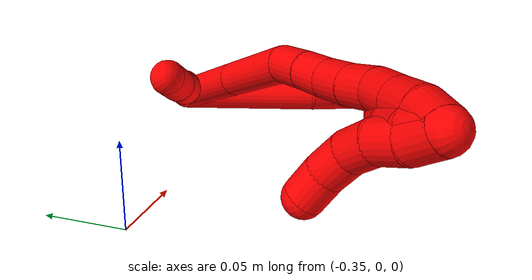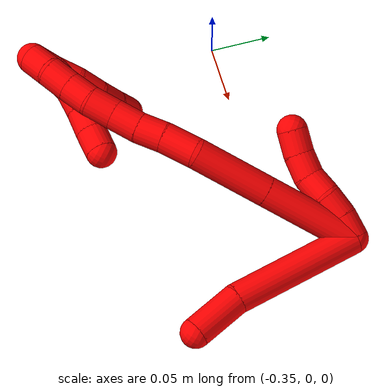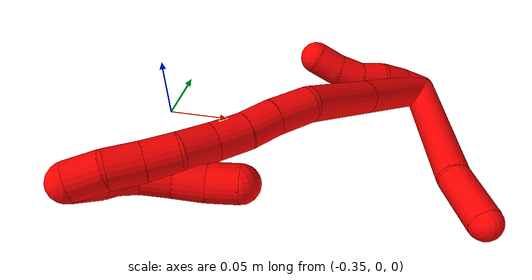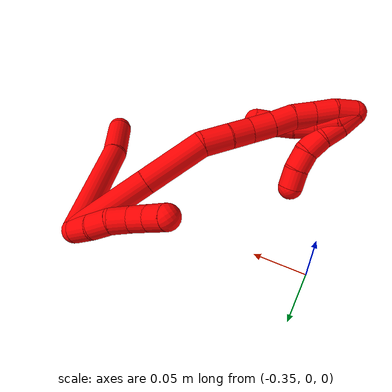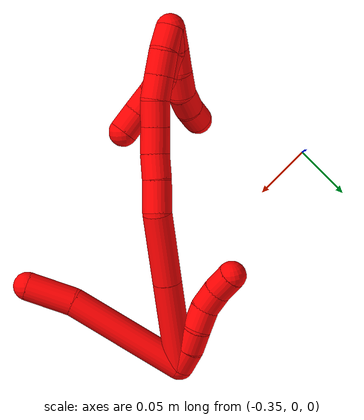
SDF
<sdf version="1.7">
 <world name="default">
  <model name="2">
   <static>0</static>
   <link name="2">
    <collision name="collision-cylinder-e_1_2_8">
     <pose>0.020703 -0.037714 0.032223 0.863751 0.395381 0.184118</pose>
     <geometry><cylinder><radius>0.0125</radius><length>0.107504</length></cylinder></geometry>
     <surface>
      <friction><ode><mu>1.16</mu><mu2>1.16</mu2><slip1>0</slip1><slip2>0</slip2></ode></friction>
      <contact><ode><kp>1e+06</kp><kd>1</kd><max_vel>0</max_vel><min_depth>0.001</min_depth></ode></contact>
     </surface>
    </collision>
    <visual name="visual-cylinder-e_1_2_8">
     <pose>0.020703 -0.037714 0.032223 0.863751 0.395381 0.184118</pose>
     <geometry><cylinder><radius>0.0125</radius><length>0.107504</length></cylinder></geometry>
     <material><ambient>1 0 0 1</ambient></material>
    </visual>
    <collision name="collision-cylinder-e_2_8_6">
     <pose>0.051926 -0.091538 0.073462 1.06058 0.517934 0.308181</pose>
     <geometry><cylinder><radius>0.0125</radius><length>0.042496</length></cylinder></geometry>
     <surface>
      <friction><ode><mu>1.16</mu><mu2>1.16</mu2><slip1>0</slip1><slip2>0</slip2></ode></friction>
      <contact><ode><kp>1e+06</kp><kd>1</kd><max_vel>0</max_vel><min_depth>0.001</min_depth></ode></contact>
     </surface>
    </collision>
    <visual name="visual-cylinder-e_2_8_6">
     <pose>0.051926 -0.091538 0.073462 1.06058 0.517934 0.308181</pose>
     <geometry><cylinder><radius>0.0125</radius><length>0.042496</length></cylinder></geometry>
     <material><ambient>1 0 0 1</ambient></material>
    </visual>
    <collision name="collision-cylinder-e_1_2_9">
     <pose>-0.002862 0.004972 0.008191 -0.54552 -0.290256 0.081723</pose>
     <geometry><cylinder><radius>0.0125</radius><length>0.02</length></cylinder></geometry>
     <surface>
      <friction><ode><mu>1.16</mu><mu2>1.16</mu2><slip1>0</slip1><slip2>0</slip2></ode></friction>
      <contact><ode><kp>1e+06</kp><kd>1</kd><max_vel>0</max_vel><min_depth>0.001</min_depth></ode></contact>
     </surface>
    </collision>
    <visual name="visual-cylinder-e_1_2_9">
     <pose>-0.002862 0.004972 0.008191 -0.54552 -0.290256 0.081723</pose>
     <geometry><cylinder><radius>0.0125</radius><length>0.02</length></cylinder></geometry>
     <material><ambient>1 0 0 1</ambient></material>
    </visual>
    <collision name="collision-cylinder-e_2_9_10">
     <pose>-0.008195 0.013567 0.025369 -0.38329 -0.249711 0.048694</pose>
     <geometry><cylinder><radius>0.0125</radius><length>0.02</length></cylinder></geometry>
     <surface>
      <friction><ode><mu>1.16</mu><mu2>1.16</mu2><slip1>0</slip1><slip2>0</slip2></ode></friction>
      <contact><ode><kp>1e+06</kp><kd>1</kd><max_vel>0</max_vel><min_depth>0.001</min_depth></ode></contact>
     </surface>
    </collision>
    <visual name="visual-cylinder-e_2_9_10">
     <pose>-0.008195 0.013567 0.025369 -0.38329 -0.249711 0.048694</pose>
     <geometry><cylinder><radius>0.0125</radius><length>0.02</length></cylinder></geometry>
     <material><ambient>1 0 0 1</ambient></material>
    </visual>
    <collision name="collision-cylinder-e_3_10_11">
     <pose>-0.0152 0.019535 0.042955 -0.266152 -0.470535 0.064156</pose>
     <geometry><cylinder><radius>0.0125</radius><length>0.02</length></cylinder></geometry>
     <surface>
      <friction><ode><mu>1.16</mu><mu2>1.16</mu2><slip1>0</slip1><slip2>0</slip2></ode></friction>
      <contact><ode><kp>1e+06</kp><kd>1</kd><max_vel>0</max_vel><min_depth>0.001</min_depth></ode></contact>
     </surface>
    </collision>
    <visual name="visual-cylinder-e_3_10_11">
     <pose>-0.0152 0.019535 0.042955 -0.266152 -0.470535 0.064156</pose>
     <geometry><cylinder><radius>0.0125</radius><length>0.02</length></cylinder></geometry>
     <material><ambient>1 0 0 1</ambient></material>
    </visual>
    <collision name="collision-cylinder-e_4_11_12">
     <pose>-0.023408 0.027304 0.059109 -0.622682 -0.376267 0.122381</pose>
     <geometry><cylinder><radius>0.0125</radius><length>0.02</length></cylinder></geometry>
     <surface>
      <friction><ode><mu>1.16</mu><mu2>1.16</mu2><slip1>0</slip1><slip2>0</slip2></ode></friction>
      <contact><ode><kp>1e+06</kp><kd>1</kd><max_vel>0</max_vel><min_depth>0.001</min_depth></ode></contact>
     </surface>
    </collision>
    <visual name="visual-cylinder-e_4_11_12">
     <pose>-0.023408 0.027304 0.059109 -0.622682 -0.376267 0.122381</pose>
     <geometry><cylinder><radius>0.0125</radius><length>0.02</length></cylinder></geometry>
     <material><ambient>1 0 0 1</ambient></material>
    </visual>
    <collision name="collision-cylinder-e_5_12_5">
     <pose>-0.030055 0.039439 0.073456 -0.779411 -0.301782 0.124732</pose>
     <geometry><cylinder><radius>0.0125</radius><length>0.02</length></cylinder></geometry>
     <surface>
      <friction><ode><mu>1.16</mu><mu2>1.16</mu2><slip1>0</slip1><slip2>0</slip2></ode></friction>
      <contact><ode><kp>1e+06</kp><kd>1</kd><max_vel>0</max_vel><min_depth>0.001</min_depth></ode></contact>
     </surface>
    </collision>
    <visual name="visual-cylinder-e_5_12_5">
     <pose>-0.030055 0.039439 0.073456 -0.779411 -0.301782 0.124732</pose>
     <geometry><cylinder><radius>0.0125</radius><length>0.02</length></cylinder></geometry>
     <material><ambient>1 0 0 1</ambient></material>
    </visual>
    <collision name="collision-cylinder-e_1_2_13">
     <pose>-0.000209 0.000433 0.039943 -0.010845 -0.005231 2.8e-05</pose>
     <geometry><cylinder><radius>0.0125</radius><length>0.079891</length></cylinder></geometry>
     <surface>
      <friction><ode><mu>1.16</mu><mu2>1.16</mu2><slip1>0</slip1><slip2>0</slip2></ode></friction>
      <contact><ode><kp>1e+06</kp><kd>1</kd><max_vel>0</max_vel><min_depth>0.001</min_depth></ode></contact>
     </surface>
    </collision>
    <visual name="visual-cylinder-e_1_2_13">
     <pose>-0.000209 0.000433 0.039943 -0.010845 -0.005231 2.8e-05</pose>
     <geometry><cylinder><radius>0.0125</radius><length>0.079891</length></cylinder></geometry>
     <material><ambient>1 0 0 1</ambient></material>
    </visual>
    <collision name="collision-cylinder-e_2_13_14">
     <pose>-0.000671 0.001189 0.111419 -0.010242 -0.008041 4.1e-05</pose>
     <geometry><cylinder><radius>0.0125</radius><length>0.063072</length></cylinder></geometry>
     <surface>
      <friction><ode><mu>1.16</mu><mu2>1.16</mu2><slip1>0</slip1><slip2>0</slip2></ode></friction>
      <contact><ode><kp>1e+06</kp><kd>1</kd><max_vel>0</max_vel><min_depth>0.001</min_depth></ode></contact>
     </surface>
    </collision>
    <visual name="visual-cylinder-e_2_13_14">
     <pose>-0.000671 0.001189 0.111419 -0.010242 -0.008041 4.1e-05</pose>
     <geometry><cylinder><radius>0.0125</radius><length>0.063072</length></cylinder></geometry>
     <material><ambient>1 0 0 1</ambient></material>
    </visual>
    <collision name="collision-cylinder-e_3_14_15">
     <pose>-0.005414 -0.000145 0.156073 0.12564 -0.327211 -0.020767</pose>
     <geometry><cylinder><radius>0.0125</radius><length>0.027933</length></cylinder></geometry>
     <surface>
      <friction><ode><mu>1.16</mu><mu2>1.16</mu2><slip1>0</slip1><slip2>0</slip2></ode></friction>
      <contact><ode><kp>1e+06</kp><kd>1</kd><max_vel>0</max_vel><min_depth>0.001</min_depth></ode></contact>
     </surface>
    </collision>
    <visual name="visual-cylinder-e_3_14_15">
     <pose>-0.005414 -0.000145 0.156073 0.12564 -0.327211 -0.020767</pose>
     <geometry><cylinder><radius>0.0125</radius><length>0.027933</length></cylinder></geometry>
     <material><ambient>1 0 0 1</ambient></material>
    </visual>
    <collision name="collision-cylinder-e_4_15_16">
     <pose>-0.013367 -0.004064 0.179222 0.221824 -0.325101 -0.036524</pose>
     <geometry><cylinder><radius>0.0125</radius><length>0.021694</length></cylinder></geometry>
     <surface>
      <friction><ode><mu>1.16</mu><mu2>1.16</mu2><slip1>0</slip1><slip2>0</slip2></ode></friction>
      <contact><ode><kp>1e+06</kp><kd>1</kd><max_vel>0</max_vel><min_depth>0.001</min_depth></ode></contact>
     </surface>
    </collision>
    <visual name="visual-cylinder-e_4_15_16">
     <pose>-0.013367 -0.004064 0.179222 0.221824 -0.325101 -0.036524</pose>
     <geometry><cylinder><radius>0.0125</radius><length>0.021694</length></cylinder></geometry>
     <material><ambient>1 0 0 1</ambient></material>
    </visual>
    <collision name="collision-cylinder-e_5_16_17">
     <pose>-0.02051 -0.007297 0.199998 0.090161 -0.328487 -0.014953</pose>
     <geometry><cylinder><radius>0.0125</radius><length>0.022805</length></cylinder></geometry>
     <surface>
      <friction><ode><mu>1.16</mu><mu2>1.16</mu2><slip1>0</slip1><slip2>0</slip2></ode></friction>
      <contact><ode><kp>1e+06</kp><kd>1</kd><max_vel>0</max_vel><min_depth>0.001</min_depth></ode></contact>
     </surface>
    </collision>
    <visual name="visual-cylinder-e_5_16_17">
     <pose>-0.02051 -0.007297 0.199998 0.090161 -0.328487 -0.014953</pose>
     <geometry><cylinder><radius>0.0125</radius><length>0.022805</length></cylinder></geometry>
     <material><ambient>1 0 0 1</ambient></material>
    </visual>
    <collision name="collision-cylinder-e_6_17_18">
     <pose>-0.027035 -0.008916 0.221551 0.059835 -0.257155 -0.007738</pose>
     <geometry><cylinder><radius>0.0125</radius><length>0.022384</length></cylinder></geometry>
     <surface>
      <friction><ode><mu>1.16</mu><mu2>1.16</mu2><slip1>0</slip1><slip2>0</slip2></ode></friction>
      <contact><ode><kp>1e+06</kp><kd>1</kd><max_vel>0</max_vel><min_depth>0.001</min_depth></ode></contact>
     </surface>
    </collision>
    <visual name="visual-cylinder-e_6_17_18">
     <pose>-0.027035 -0.008916 0.221551 0.059835 -0.257155 -0.007738</pose>
     <geometry><cylinder><radius>0.0125</radius><length>0.022384</length></cylinder></geometry>
     <material><ambient>1 0 0 1</ambient></material>
    </visual>
    <collision name="collision-cylinder-e_7_18_19">
     <pose>-0.03455 -0.009593 0.241598 0.003257 -0.467723 -0.000776</pose>
     <geometry><cylinder><radius>0.0125</radius><length>0.020709</length></cylinder></geometry>
     <surface>
      <friction><ode><mu>1.16</mu><mu2>1.16</mu2><slip1>0</slip1><slip2>0</slip2></ode></friction>
      <contact><ode><kp>1e+06</kp><kd>1</kd><max_vel>0</max_vel><min_depth>0.001</min_depth></ode></contact>
     </surface>
    </collision>
    <visual name="visual-cylinder-e_7_18_19">
     <pose>-0.03455 -0.009593 0.241598 0.003257 -0.467723 -0.000776</pose>
     <geometry><cylinder><radius>0.0125</radius><length>0.020709</length></cylinder></geometry>
     <material><ambient>1 0 0 1</ambient></material>
    </visual>
    <collision name="collision-cylinder-e_8_19_20">
     <pose>-0.04384 -0.009219 0.260415 -0.042247 -0.449301 0.009655</pose>
     <geometry><cylinder><radius>0.0125</radius><length>0.021278</length></cylinder></geometry>
     <surface>
      <friction><ode><mu>1.16</mu><mu2>1.16</mu2><slip1>0</slip1><slip2>0</slip2></ode></friction>
      <contact><ode><kp>1e+06</kp><kd>1</kd><max_vel>0</max_vel><min_depth>0.001</min_depth></ode></contact>
     </surface>
    </collision>
    <visual name="visual-cylinder-e_8_19_20">
     <pose>-0.04384 -0.009219 0.260415 -0.042247 -0.449301 0.009655</pose>
     <geometry><cylinder><radius>0.0125</radius><length>0.021278</length></cylinder></geometry>
     <material><ambient>1 0 0 1</ambient></material>
    </visual>
    <collision name="collision-cylinder-e_9_20_1">
     <pose>-0.054707 -0.009174 0.27794 0.045306 -0.665418 -0.015658</pose>
     <geometry><cylinder><radius>0.0125</radius><length>0.020233</length></cylinder></geometry>
     <surface>
      <friction><ode><mu>1.16</mu><mu2>1.16</mu2><slip1>0</slip1><slip2>0</slip2></ode></friction>
      <contact><ode><kp>1e+06</kp><kd>1</kd><max_vel>0</max_vel><min_depth>0.001</min_depth></ode></contact>
     </surface>
    </collision>
    <visual name="visual-cylinder-e_9_20_1">
     <pose>-0.054707 -0.009174 0.27794 0.045306 -0.665418 -0.015658</pose>
     <geometry><cylinder><radius>0.0125</radius><length>0.020233</length></cylinder></geometry>
     <material><ambient>1 0 0 1</ambient></material>
    </visual>
    <collision name="collision-cylinder-e_1_1_21">
     <pose>-0.062312 -0.01046 0.276027 3.04802 -0.136427 -1.93998</pose>
     <geometry><cylinder><radius>0.0125</radius><length>0.02</length></cylinder></geometry>
     <surface>
      <friction><ode><mu>1.16</mu><mu2>1.16</mu2><slip1>0</slip1><slip2>0</slip2></ode></friction>
      <contact><ode><kp>1e+06</kp><kd>1</kd><max_vel>0</max_vel><min_depth>0.001</min_depth></ode></contact>
     </surface>
    </collision>
    <visual name="visual-cylinder-e_1_1_21">
     <pose>-0.062312 -0.01046 0.276027 3.04802 -0.136427 -1.93998</pose>
     <geometry><cylinder><radius>0.0125</radius><length>0.02</length></cylinder></geometry>
     <material><ambient>1 0 0 1</ambient></material>
    </visual>
    <collision name="collision-cylinder-e_2_21_22">
     <pose>-0.063238 -0.010904 0.256184 -3.09328 0.043438 -1.4646</pose>
     <geometry><cylinder><radius>0.0125</radius><length>0.02</length></cylinder></geometry>
     <surface>
      <friction><ode><mu>1.16</mu><mu2>1.16</mu2><slip1>0</slip1><slip2>0</slip2></ode></friction>
      <contact><ode><kp>1e+06</kp><kd>1</kd><max_vel>0</max_vel><min_depth>0.001</min_depth></ode></contact>
     </surface>
    </collision>
    <visual name="visual-cylinder-e_2_21_22">
     <pose>-0.063238 -0.010904 0.256184 -3.09328 0.043438 -1.4646</pose>
     <geometry><cylinder><radius>0.0125</radius><length>0.02</length></cylinder></geometry>
     <material><ambient>1 0 0 1</ambient></material>
    </visual>
    <collision name="collision-cylinder-e_3_22_23">
     <pose>-0.064474 -0.011696 0.236428 3.0119 -0.167758 -1.82628</pose>
     <geometry><cylinder><radius>0.0125</radius><length>0.02</length></cylinder></geometry>
     <surface>
      <friction><ode><mu>1.16</mu><mu2>1.16</mu2><slip1>0</slip1><slip2>0</slip2></ode></friction>
      <contact><ode><kp>1e+06</kp><kd>1</kd><max_vel>0</max_vel><min_depth>0.001</min_depth></ode></contact>
     </surface>
    </collision>
    <visual name="visual-cylinder-e_3_22_23">
     <pose>-0.064474 -0.011696 0.236428 3.0119 -0.167758 -1.82628</pose>
     <geometry><cylinder><radius>0.0125</radius><length>0.02</length></cylinder></geometry>
     <material><ambient>1 0 0 1</ambient></material>
    </visual>
    <collision name="collision-cylinder-e_4_23_24">
     <pose>-0.071007 -0.014727 0.218092 2.93924 -0.507937 -2.39596</pose>
     <geometry><cylinder><radius>0.0125</radius><length>0.02</length></cylinder></geometry>
     <surface>
      <friction><ode><mu>1.16</mu><mu2>1.16</mu2><slip1>0</slip1><slip2>0</slip2></ode></friction>
      <contact><ode><kp>1e+06</kp><kd>1</kd><max_vel>0</max_vel><min_depth>0.001</min_depth></ode></contact>
     </surface>
    </collision>
    <visual name="visual-cylinder-e_4_23_24">
     <pose>-0.071007 -0.014727 0.218092 2.93924 -0.507937 -2.39596</pose>
     <geometry><cylinder><radius>0.0125</radius><length>0.02</length></cylinder></geometry>
     <material><ambient>1 0 0 1</ambient></material>
    </visual>
    <collision name="collision-cylinder-e_5_24_4">
     <pose>-0.082341 -0.01837 0.202145 2.89162 -0.703634 -2.48205</pose>
     <geometry><cylinder><radius>0.0125</radius><length>0.02</length></cylinder></geometry>
     <surface>
      <friction><ode><mu>1.16</mu><mu2>1.16</mu2><slip1>0</slip1><slip2>0</slip2></ode></friction>
      <contact><ode><kp>1e+06</kp><kd>1</kd><max_vel>0</max_vel><min_depth>0.001</min_depth></ode></contact>
     </surface>
    </collision>
    <visual name="visual-cylinder-e_5_24_4">
     <pose>-0.082341 -0.01837 0.202145 2.89162 -0.703634 -2.48205</pose>
     <geometry><cylinder><radius>0.0125</radius><length>0.02</length></cylinder></geometry>
     <material><ambient>1 0 0 1</ambient></material>
    </visual>
    <collision name="collision-cylinder-e_1_1_25">
     <pose>-0.059572 -0.009931 0.275994 3.10153 0.138506 2.57928</pose>
     <geometry><cylinder><radius>0.0125</radius><length>0.02</length></cylinder></geometry>
     <surface>
      <friction><ode><mu>1.16</mu><mu2>1.16</mu2><slip1>0</slip1><slip2>0</slip2></ode></friction>
      <contact><ode><kp>1e+06</kp><kd>1</kd><max_vel>0</max_vel><min_depth>0.001</min_depth></ode></contact>
     </surface>
    </collision>
    <visual name="visual-cylinder-e_1_1_25">
     <pose>-0.059572 -0.009931 0.275994 3.10153 0.138506 2.57928</pose>
     <geometry><cylinder><radius>0.0125</radius><length>0.02</length></cylinder></geometry>
     <material><ambient>1 0 0 1</ambient></material>
    </visual>
    <collision name="collision-cylinder-e_2_25_26">
     <pose>-0.054518 -0.012508 0.257056 2.90505 0.376144 2.02535</pose>
     <geometry><cylinder><radius>0.0125</radius><length>0.02</length></cylinder></geometry>
     <surface>
      <friction><ode><mu>1.16</mu><mu2>1.16</mu2><slip1>0</slip1><slip2>0</slip2></ode></friction>
      <contact><ode><kp>1e+06</kp><kd>1</kd><max_vel>0</max_vel><min_depth>0.001</min_depth></ode></contact>
     </surface>
    </collision>
    <visual name="visual-cylinder-e_2_25_26">
     <pose>-0.054518 -0.012508 0.257056 2.90505 0.376144 2.02535</pose>
     <geometry><cylinder><radius>0.0125</radius><length>0.02</length></cylinder></geometry>
     <material><ambient>1 0 0 1</ambient></material>
    </visual>
    <collision name="collision-cylinder-e_3_26_27">
     <pose>-0.045632 -0.018714 0.240489 2.65027 0.54825 1.68526</pose>
     <geometry><cylinder><radius>0.0125</radius><length>0.02</length></cylinder></geometry>
     <surface>
      <friction><ode><mu>1.16</mu><mu2>1.16</mu2><slip1>0</slip1><slip2>0</slip2></ode></friction>
      <contact><ode><kp>1e+06</kp><kd>1</kd><max_vel>0</max_vel><min_depth>0.001</min_depth></ode></contact>
     </surface>
    </collision>
    <visual name="visual-cylinder-e_3_26_27">
     <pose>-0.045632 -0.018714 0.240489 2.65027 0.54825 1.68526</pose>
     <geometry><cylinder><radius>0.0125</radius><length>0.02</length></cylinder></geometry>
     <material><ambient>1 0 0 1</ambient></material>
    </visual>
    <collision name="collision-cylinder-e_4_27_28">
     <pose>-0.034365 -0.026943 0.226206 2.58521 0.65045 1.73612</pose>
     <geometry><cylinder><radius>0.0125</radius><length>0.02</length></cylinder></geometry>
     <surface>
      <friction><ode><mu>1.16</mu><mu2>1.16</mu2><slip1>0</slip1><slip2>0</slip2></ode></friction>
      <contact><ode><kp>1e+06</kp><kd>1</kd><max_vel>0</max_vel><min_depth>0.001</min_depth></ode></contact>
     </surface>
    </collision>
    <visual name="visual-cylinder-e_4_27_28">
     <pose>-0.034365 -0.026943 0.226206 2.58521 0.65045 1.73612</pose>
     <geometry><cylinder><radius>0.0125</radius><length>0.02</length></cylinder></geometry>
     <material><ambient>1 0 0 1</ambient></material>
    </visual>
    <collision name="collision-cylinder-e_5_28_3">
     <pose>-0.021603 -0.034552 0.212859 2.66449 0.735047 2.01492</pose>
     <geometry><cylinder><radius>0.0125</radius><length>0.02</length></cylinder></geometry>
     <surface>
      <friction><ode><mu>1.16</mu><mu2>1.16</mu2><slip1>0</slip1><slip2>0</slip2></ode></friction>
      <contact><ode><kp>1e+06</kp><kd>1</kd><max_vel>0</max_vel><min_depth>0.001</min_depth></ode></contact>
     </surface>
    </collision>
    <visual name="visual-cylinder-e_5_28_3">
     <pose>-0.021603 -0.034552 0.212859 2.66449 0.735047 2.01492</pose>
     <geometry><cylinder><radius>0.0125</radius><length>0.02</length></cylinder></geometry>
     <material><ambient>1 0 0 1</ambient></material>
    </visual>
    <collision name="collision-sphere-3">
     <pose>-0.014897 -0.037959 0.206269 0 -0 0</pose>
     <geometry><sphere><radius>0.0125</radius></sphere></geometry>
     <surface>
      <friction><ode><mu>1.16</mu><mu2>1.16</mu2><slip1>0</slip1><slip2>0</slip2></ode></friction>
      <contact><ode><kp>1e+06</kp><kd>1</kd><max_vel>0</max_vel><min_depth>0.001</min_depth></ode></contact>
     </surface>
    </collision>
    <visual name="visual-sphere-3">
     <pose>-0.014897 -0.037959 0.206269 0 -0 0</pose>
     <geometry><sphere><radius>0.0125</radius></sphere></geometry>
     <material><ambient>1 0 0 1</ambient></material>
    </visual>
    <collision name="collision-sphere-28">
     <pose>-0.02831 -0.031146 0.219449 0 -0 0</pose>
     <geometry><sphere><radius>0.0125</radius></sphere></geometry>
     <surface>
      <friction><ode><mu>1.16</mu><mu2>1.16</mu2><slip1>0</slip1><slip2>0</slip2></ode></friction>
      <contact><ode><kp>1e+06</kp><kd>1</kd><max_vel>0</max_vel><min_depth>0.001</min_depth></ode></contact>
     </surface>
    </collision>
    <visual name="visual-sphere-28">
     <pose>-0.02831 -0.031146 0.219449 0 -0 0</pose>
     <geometry><sphere><radius>0.0125</radius></sphere></geometry>
     <material><ambient>1 0 0 1</ambient></material>
    </visual>
    <collision name="collision-sphere-27">
     <pose>-0.04042 -0.02274 0.232964 0 -0 0</pose>
     <geometry><sphere><radius>0.0125</radius></sphere></geometry>
     <surface>
      <friction><ode><mu>1.16</mu><mu2>1.16</mu2><slip1>0</slip1><slip2>0</slip2></ode></friction>
      <contact><ode><kp>1e+06</kp><kd>1</kd><max_vel>0</max_vel><min_depth>0.001</min_depth></ode></contact>
     </surface>
    </collision>
    <visual name="visual-sphere-27">
     <pose>-0.04042 -0.02274 0.232964 0 -0 0</pose>
     <geometry><sphere><radius>0.0125</radius></sphere></geometry>
     <material><ambient>1 0 0 1</ambient></material>
    </visual>
    <collision name="collision-sphere-26">
     <pose>-0.050844 -0.014687 0.248014 0 -0 0</pose>
     <geometry><sphere><radius>0.0125</radius></sphere></geometry>
     <surface>
      <friction><ode><mu>1.16</mu><mu2>1.16</mu2><slip1>0</slip1><slip2>0</slip2></ode></friction>
      <contact><ode><kp>1e+06</kp><kd>1</kd><max_vel>0</max_vel><min_depth>0.001</min_depth></ode></contact>
     </surface>
    </collision>
    <visual name="visual-sphere-26">
     <pose>-0.050844 -0.014687 0.248014 0 -0 0</pose>
     <geometry><sphere><radius>0.0125</radius></sphere></geometry>
     <material><ambient>1 0 0 1</ambient></material>
    </visual>
    <collision name="collision-sphere-25">
     <pose>-0.058191 -0.010328 0.266098 0 -0 0</pose>
     <geometry><sphere><radius>0.0125</radius></sphere></geometry>
     <surface>
      <friction><ode><mu>1.16</mu><mu2>1.16</mu2><slip1>0</slip1><slip2>0</slip2></ode></friction>
      <contact><ode><kp>1e+06</kp><kd>1</kd><max_vel>0</max_vel><min_depth>0.001</min_depth></ode></contact>
     </surface>
    </collision>
    <visual name="visual-sphere-25">
     <pose>-0.058191 -0.010328 0.266098 0 -0 0</pose>
     <geometry><sphere><radius>0.0125</radius></sphere></geometry>
     <material><ambient>1 0 0 1</ambient></material>
    </visual>
    <collision name="collision-sphere-4">
     <pose>-0.088811 -0.020256 0.194757 0 -0 0</pose>
     <geometry><sphere><radius>0.0125</radius></sphere></geometry>
     <surface>
      <friction><ode><mu>1.16</mu><mu2>1.16</mu2><slip1>0</slip1><slip2>0</slip2></ode></friction>
      <contact><ode><kp>1e+06</kp><kd>1</kd><max_vel>0</max_vel><min_depth>0.001</min_depth></ode></contact>
     </surface>
    </collision>
    <visual name="visual-sphere-4">
     <pose>-0.088811 -0.020256 0.194757 0 -0 0</pose>
     <geometry><sphere><radius>0.0125</radius></sphere></geometry>
     <material><ambient>1 0 0 1</ambient></material>
    </visual>
    <collision name="collision-sphere-24">
     <pose>-0.075871 -0.016483 0.209533 0 -0 0</pose>
     <geometry><sphere><radius>0.0125</radius></sphere></geometry>
     <surface>
      <friction><ode><mu>1.16</mu><mu2>1.16</mu2><slip1>0</slip1><slip2>0</slip2></ode></friction>
      <contact><ode><kp>1e+06</kp><kd>1</kd><max_vel>0</max_vel><min_depth>0.001</min_depth></ode></contact>
     </surface>
    </collision>
    <visual name="visual-sphere-24">
     <pose>-0.075871 -0.016483 0.209533 0 -0 0</pose>
     <geometry><sphere><radius>0.0125</radius></sphere></geometry>
     <material><ambient>1 0 0 1</ambient></material>
    </visual>
    <collision name="collision-sphere-23">
     <pose>-0.066143 -0.012971 0.226651 0 -0 0</pose>
     <geometry><sphere><radius>0.0125</radius></sphere></geometry>
     <surface>
      <friction><ode><mu>1.16</mu><mu2>1.16</mu2><slip1>0</slip1><slip2>0</slip2></ode></friction>
      <contact><ode><kp>1e+06</kp><kd>1</kd><max_vel>0</max_vel><min_depth>0.001</min_depth></ode></contact>
     </surface>
    </collision>
    <visual name="visual-sphere-23">
     <pose>-0.066143 -0.012971 0.226651 0 -0 0</pose>
     <geometry><sphere><radius>0.0125</radius></sphere></geometry>
     <material><ambient>1 0 0 1</ambient></material>
    </visual>
    <collision name="collision-sphere-22">
     <pose>-0.062804 -0.010421 0.246205 0 -0 0</pose>
     <geometry><sphere><radius>0.0125</radius></sphere></geometry>
     <surface>
      <friction><ode><mu>1.16</mu><mu2>1.16</mu2><slip1>0</slip1><slip2>0</slip2></ode></friction>
      <contact><ode><kp>1e+06</kp><kd>1</kd><max_vel>0</max_vel><min_depth>0.001</min_depth></ode></contact>
     </surface>
    </collision>
    <visual name="visual-sphere-22">
     <pose>-0.062804 -0.010421 0.246205 0 -0 0</pose>
     <geometry><sphere><radius>0.0125</radius></sphere></geometry>
     <material><ambient>1 0 0 1</ambient></material>
    </visual>
    <collision name="collision-sphere-21">
     <pose>-0.063672 -0.011386 0.266163 0 -0 0</pose>
     <geometry><sphere><radius>0.0125</radius></sphere></geometry>
     <surface>
      <friction><ode><mu>1.16</mu><mu2>1.16</mu2><slip1>0</slip1><slip2>0</slip2></ode></friction>
      <contact><ode><kp>1e+06</kp><kd>1</kd><max_vel>0</max_vel><min_depth>0.001</min_depth></ode></contact>
     </surface>
    </collision>
    <visual name="visual-sphere-21">
     <pose>-0.063672 -0.011386 0.266163 0 -0 0</pose>
     <geometry><sphere><radius>0.0125</radius></sphere></geometry>
     <material><ambient>1 0 0 1</ambient></material>
    </visual>
    <collision name="collision-sphere-1">
     <pose>-0.060952 -0.009535 0.28589 0 -0 0</pose>
     <geometry><sphere><radius>0.0125</radius></sphere></geometry>
     <surface>
      <friction><ode><mu>1.16</mu><mu2>1.16</mu2><slip1>0</slip1><slip2>0</slip2></ode></friction>
      <contact><ode><kp>1e+06</kp><kd>1</kd><max_vel>0</max_vel><min_depth>0.001</min_depth></ode></contact>
     </surface>
    </collision>
    <visual name="visual-sphere-1">
     <pose>-0.060952 -0.009535 0.28589 0 -0 0</pose>
     <geometry><sphere><radius>0.0125</radius></sphere></geometry>
     <material><ambient>1 0 0 1</ambient></material>
    </visual>
    <collision name="collision-sphere-11">
     <pose>-0.019734 0.021879 0.051554 0 -0 0</pose>
     <geometry><sphere><radius>0.0125</radius></sphere></geometry>
     <surface>
      <friction><ode><mu>1.16</mu><mu2>1.16</mu2><slip1>0</slip1><slip2>0</slip2></ode></friction>
      <contact><ode><kp>1e+06</kp><kd>1</kd><max_vel>0</max_vel><min_depth>0.001</min_depth></ode></contact>
     </surface>
    </collision>
    <visual name="visual-sphere-11">
     <pose>-0.019734 0.021879 0.051554 0 -0 0</pose>
     <geometry><sphere><radius>0.0125</radius></sphere></geometry>
     <material><ambient>1 0 0 1</ambient></material>
    </visual>
    <collision name="collision-sphere-10">
     <pose>-0.010666 0.017191 0.034355 0 -0 0</pose>
     <geometry><sphere><radius>0.0125</radius></sphere></geometry>
     <surface>
      <friction><ode><mu>1.16</mu><mu2>1.16</mu2><slip1>0</slip1><slip2>0</slip2></ode></friction>
      <contact><ode><kp>1e+06</kp><kd>1</kd><max_vel>0</max_vel><min_depth>0.001</min_depth></ode></contact>
     </surface>
    </collision>
    <visual name="visual-sphere-10">
     <pose>-0.010666 0.017191 0.034355 0 -0 0</pose>
     <geometry><sphere><radius>0.0125</radius></sphere></geometry>
     <material><ambient>1 0 0 1</ambient></material>
    </visual>
    <collision name="collision-sphere-6">
     <pose>0.062445 -0.107648 0.082478 0 -0 0</pose>
     <geometry><sphere><radius>0.0125</radius></sphere></geometry>
     <surface>
      <friction><ode><mu>1.16</mu><mu2>1.16</mu2><slip1>0</slip1><slip2>0</slip2></ode></friction>
      <contact><ode><kp>1e+06</kp><kd>1</kd><max_vel>0</max_vel><min_depth>0.001</min_depth></ode></contact>
     </surface>
    </collision>
    <visual name="visual-sphere-6">
     <pose>0.062445 -0.107648 0.082478 0 -0 0</pose>
     <geometry><sphere><radius>0.0125</radius></sphere></geometry>
     <material><ambient>1 0 0 1</ambient></material>
    </visual>
    <collision name="collision-sphere-9">
     <pose>-0.005724 0.009943 0.016382 0 -0 0</pose>
     <geometry><sphere><radius>0.0125</radius></sphere></geometry>
     <surface>
      <friction><ode><mu>1.16</mu><mu2>1.16</mu2><slip1>0</slip1><slip2>0</slip2></ode></friction>
      <contact><ode><kp>1e+06</kp><kd>1</kd><max_vel>0</max_vel><min_depth>0.001</min_depth></ode></contact>
     </surface>
    </collision>
    <visual name="visual-sphere-9">
     <pose>-0.005724 0.009943 0.016382 0 -0 0</pose>
     <geometry><sphere><radius>0.0125</radius></sphere></geometry>
     <material><ambient>1 0 0 1</ambient></material>
    </visual>
    <collision name="collision-sphere-2">
     <geometry><sphere><radius>0.0125</radius></sphere></geometry>
     <surface>
      <friction><ode><mu>1.16</mu><mu2>1.16</mu2><slip1>0</slip1><slip2>0</slip2></ode></friction>
      <contact><ode><kp>1e+06</kp><kd>1</kd><max_vel>0</max_vel><min_depth>0.001</min_depth></ode></contact>
     </surface>
    </collision>
    <visual name="visual-sphere-2">
     <geometry><sphere><radius>0.0125</radius></sphere></geometry>
     <material><ambient>1 0 0 1</ambient></material>
    </visual>
    <collision name="collision-sphere-19">
     <pose>-0.039219 -0.009623 0.250841 0 -0 0</pose>
     <geometry><sphere><radius>0.0125</radius></sphere></geometry>
     <surface>
      <friction><ode><mu>1.16</mu><mu2>1.16</mu2><slip1>0</slip1><slip2>0</slip2></ode></friction>
      <contact><ode><kp>1e+06</kp><kd>1</kd><max_vel>0</max_vel><min_depth>0.001</min_depth></ode></contact>
     </surface>
    </collision>
    <visual name="visual-sphere-19">
     <pose>-0.039219 -0.009623 0.250841 0 -0 0</pose>
     <geometry><sphere><radius>0.0125</radius></sphere></geometry>
     <material><ambient>1 0 0 1</ambient></material>
    </visual>
    <collision name="collision-sphere-8">
     <pose>0.041406 -0.075428 0.064446 0 -0 0</pose>
     <geometry><sphere><radius>0.0125</radius></sphere></geometry>
     <surface>
      <friction><ode><mu>1.16</mu><mu2>1.16</mu2><slip1>0</slip1><slip2>0</slip2></ode></friction>
      <contact><ode><kp>1e+06</kp><kd>1</kd><max_vel>0</max_vel><min_depth>0.001</min_depth></ode></contact>
     </surface>
    </collision>
    <visual name="visual-sphere-8">
     <pose>0.041406 -0.075428 0.064446 0 -0 0</pose>
     <geometry><sphere><radius>0.0125</radius></sphere></geometry>
     <material><ambient>1 0 0 1</ambient></material>
    </visual>
    <collision name="collision-sphere-12">
     <pose>-0.027083 0.032728 0.066664 0 -0 0</pose>
     <geometry><sphere><radius>0.0125</radius></sphere></geometry>
     <surface>
      <friction><ode><mu>1.16</mu><mu2>1.16</mu2><slip1>0</slip1><slip2>0</slip2></ode></friction>
      <contact><ode><kp>1e+06</kp><kd>1</kd><max_vel>0</max_vel><min_depth>0.001</min_depth></ode></contact>
     </surface>
    </collision>
    <visual name="visual-sphere-12">
     <pose>-0.027083 0.032728 0.066664 0 -0 0</pose>
     <geometry><sphere><radius>0.0125</radius></sphere></geometry>
     <material><ambient>1 0 0 1</ambient></material>
    </visual>
    <collision name="collision-sphere-5">
     <pose>-0.033027 0.04615 0.080248 0 -0 0</pose>
     <geometry><sphere><radius>0.0125</radius></sphere></geometry>
     <surface>
      <friction><ode><mu>1.16</mu><mu2>1.16</mu2><slip1>0</slip1><slip2>0</slip2></ode></friction>
      <contact><ode><kp>1e+06</kp><kd>1</kd><max_vel>0</max_vel><min_depth>0.001</min_depth></ode></contact>
     </surface>
    </collision>
    <visual name="visual-sphere-5">
     <pose>-0.033027 0.04615 0.080248 0 -0 0</pose>
     <geometry><sphere><radius>0.0125</radius></sphere></geometry>
     <material><ambient>1 0 0 1</ambient></material>
    </visual>
    <collision name="collision-sphere-13">
     <pose>-0.000418 0.000866 0.079886 0 -0 0</pose>
     <geometry><sphere><radius>0.0125</radius></sphere></geometry>
     <surface>
      <friction><ode><mu>1.16</mu><mu2>1.16</mu2><slip1>0</slip1><slip2>0</slip2></ode></friction>
      <contact><ode><kp>1e+06</kp><kd>1</kd><max_vel>0</max_vel><min_depth>0.001</min_depth></ode></contact>
     </surface>
    </collision>
    <visual name="visual-sphere-13">
     <pose>-0.000418 0.000866 0.079886 0 -0 0</pose>
     <geometry><sphere><radius>0.0125</radius></sphere></geometry>
     <material><ambient>1 0 0 1</ambient></material>
    </visual>
    <collision name="collision-sphere-14">
     <pose>-0.000925 0.001512 0.142952 0 -0 0</pose>
     <geometry><sphere><radius>0.0125</radius></sphere></geometry>
     <surface>
      <friction><ode><mu>1.16</mu><mu2>1.16</mu2><slip1>0</slip1><slip2>0</slip2></ode></friction>
      <contact><ode><kp>1e+06</kp><kd>1</kd><max_vel>0</max_vel><min_depth>0.001</min_depth></ode></contact>
     </surface>
    </collision>
    <visual name="visual-sphere-14">
     <pose>-0.000925 0.001512 0.142952 0 -0 0</pose>
     <geometry><sphere><radius>0.0125</radius></sphere></geometry>
     <material><ambient>1 0 0 1</ambient></material>
    </visual>
    <collision name="collision-sphere-15">
     <pose>-0.009903 -0.001802 0.169195 0 -0 0</pose>
     <geometry><sphere><radius>0.0125</radius></sphere></geometry>
     <surface>
      <friction><ode><mu>1.16</mu><mu2>1.16</mu2><slip1>0</slip1><slip2>0</slip2></ode></friction>
      <contact><ode><kp>1e+06</kp><kd>1</kd><max_vel>0</max_vel><min_depth>0.001</min_depth></ode></contact>
     </surface>
    </collision>
    <visual name="visual-sphere-15">
     <pose>-0.009903 -0.001802 0.169195 0 -0 0</pose>
     <geometry><sphere><radius>0.0125</radius></sphere></geometry>
     <material><ambient>1 0 0 1</ambient></material>
    </visual>
    <collision name="collision-sphere-16">
     <pose>-0.016832 -0.006325 0.189249 0 -0 0</pose>
     <geometry><sphere><radius>0.0125</radius></sphere></geometry>
     <surface>
      <friction><ode><mu>1.16</mu><mu2>1.16</mu2><slip1>0</slip1><slip2>0</slip2></ode></friction>
      <contact><ode><kp>1e+06</kp><kd>1</kd><max_vel>0</max_vel><min_depth>0.001</min_depth></ode></contact>
     </surface>
    </collision>
    <visual name="visual-sphere-16">
     <pose>-0.016832 -0.006325 0.189249 0 -0 0</pose>
     <geometry><sphere><radius>0.0125</radius></sphere></geometry>
     <material><ambient>1 0 0 1</ambient></material>
    </visual>
    <collision name="collision-sphere-17">
     <pose>-0.024189 -0.008269 0.210746 0 -0 0</pose>
     <geometry><sphere><radius>0.0125</radius></sphere></geometry>
     <surface>
      <friction><ode><mu>1.16</mu><mu2>1.16</mu2><slip1>0</slip1><slip2>0</slip2></ode></friction>
      <contact><ode><kp>1e+06</kp><kd>1</kd><max_vel>0</max_vel><min_depth>0.001</min_depth></ode></contact>
     </surface>
    </collision>
    <visual name="visual-sphere-17">
     <pose>-0.024189 -0.008269 0.210746 0 -0 0</pose>
     <geometry><sphere><radius>0.0125</radius></sphere></geometry>
     <material><ambient>1 0 0 1</ambient></material>
    </visual>
    <collision name="collision-sphere-18">
     <pose>-0.029882 -0.009563 0.232356 0 -0 0</pose>
     <geometry><sphere><radius>0.0125</radius></sphere></geometry>
     <surface>
      <friction><ode><mu>1.16</mu><mu2>1.16</mu2><slip1>0</slip1><slip2>0</slip2></ode></friction>
      <contact><ode><kp>1e+06</kp><kd>1</kd><max_vel>0</max_vel><min_depth>0.001</min_depth></ode></contact>
     </surface>
    </collision>
    <visual name="visual-sphere-18">
     <pose>-0.029882 -0.009563 0.232356 0 -0 0</pose>
     <geometry><sphere><radius>0.0125</radius></sphere></geometry>
     <material><ambient>1 0 0 1</ambient></material>
    </visual>
    <collision name="collision-sphere-20">
     <pose>-0.048461 -0.008814 0.26999 0 -0 0</pose>
     <geometry><sphere><radius>0.0125</radius></sphere></geometry>
     <surface>
      <friction><ode><mu>1.16</mu><mu2>1.16</mu2><slip1>0</slip1><slip2>0</slip2></ode></friction>
      <contact><ode><kp>1e+06</kp><kd>1</kd><max_vel>0</max_vel><min_depth>0.001</min_depth></ode></contact>
     </surface>
    </collision>
    <visual name="visual-sphere-20">
     <pose>-0.048461 -0.008814 0.26999 0 -0 0</pose>
     <geometry><sphere><radius>0.0125</radius></sphere></geometry>
     <material><ambient>1 0 0 1</ambient></material>
    </visual>
    <inertial>
     <pose>-0.016896 -0.013538 0.137269 0 -0 0</pose>
     <mass>0.75</mass>
     <inertia>
      <ixx>0.000206</ixx>
      <ixy>0</ixy>
      <ixz>0</ixz>
      <iyy>0.000187</iyy>
      <iyz>0</iyz>
      <izz>6.4e-05</izz>
     </inertia>
    </inertial>
   </link>
   <pose>-0.142069 0.055732 0.01229 1.06588 -0.718116 -0.280077</pose>
  </model>
 </world>
</sdf>
